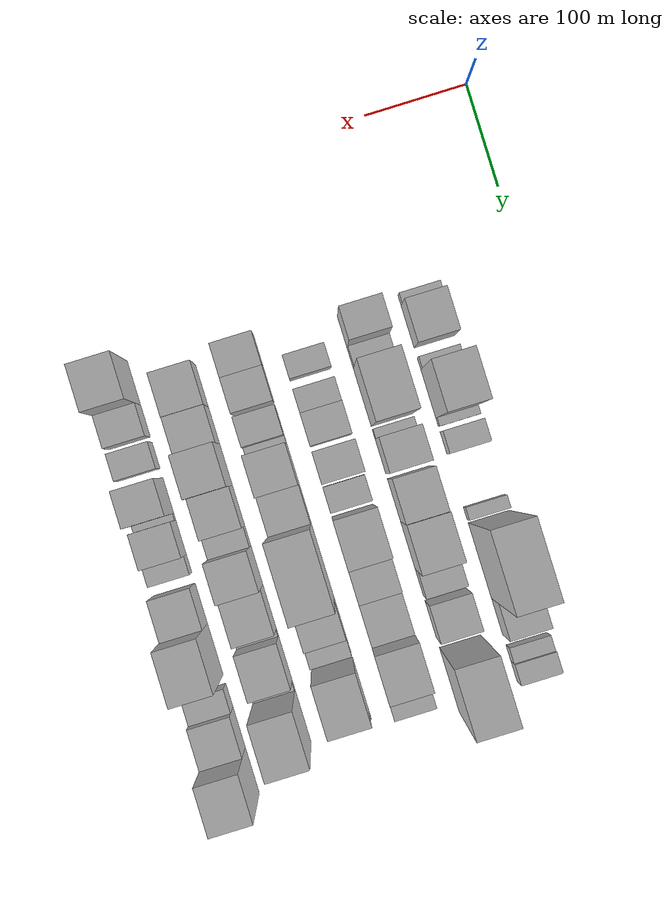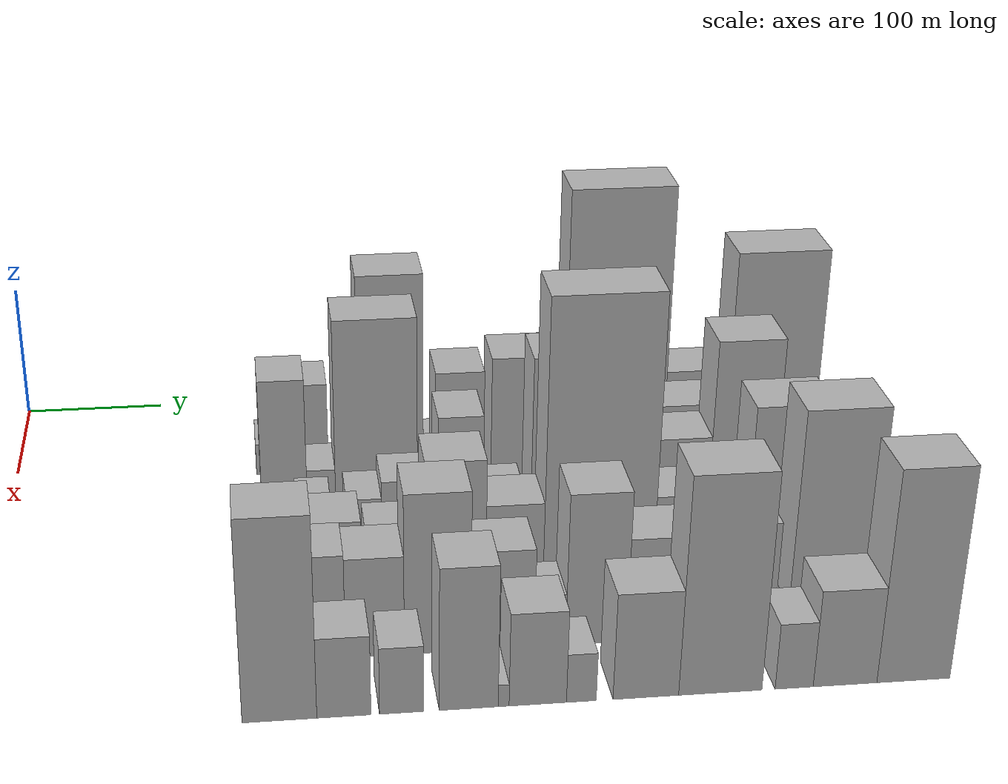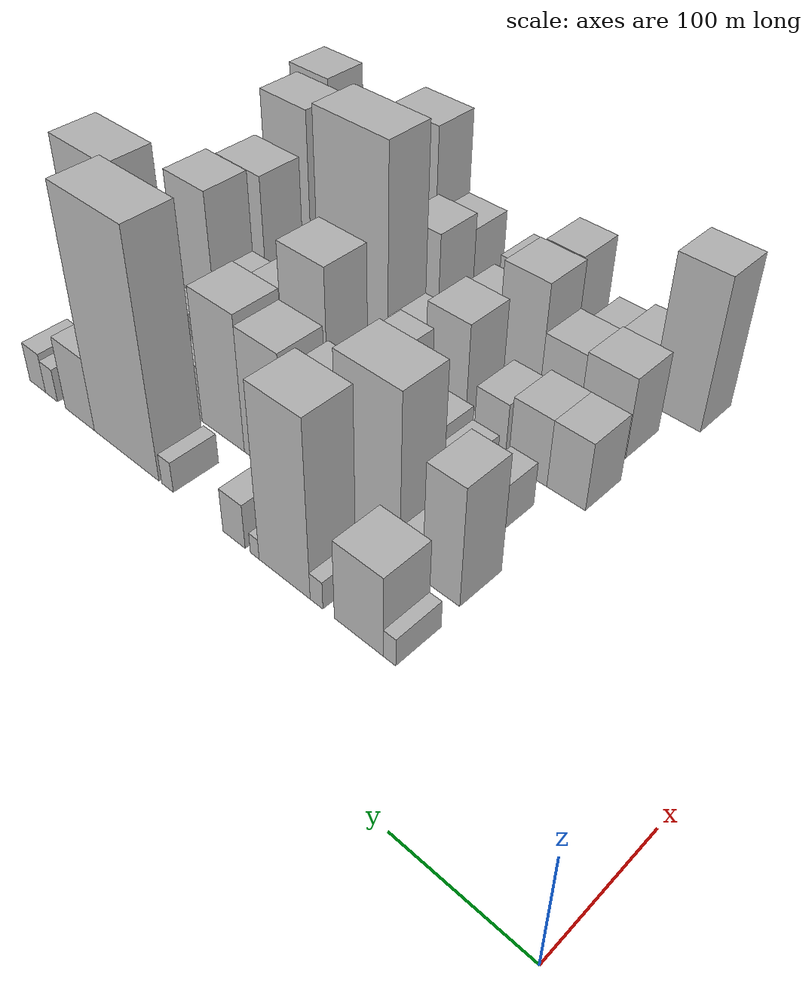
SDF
<sdf version="1.6">
 <world name="default">
  <model name="building_34">
   <static>1</static>
   <pose>100.0000 175.5457 0 0.000000 0.000000 0.000000</pose>
   <link name="link">
    <pose>0 0 12.00 0 0 0</pose>
    <collision name="collision"><geometry><box><size>40.0000 10.1981 24.0000</size></box></geometry></collision>
    <visual name="visual">
     <cast_shadows>0</cast_shadows>
     <geometry><box><size>40.0000 10.1981 24.0000</size></box></geometry>
     <material>
      <script>
       <uri>model://HANNAS_wall/materials/scripts</uri>
       <uri>model://HANNAS_wall/materials/textures</uri>
       <name>vrc/HANNAS_wall</name>
      </script>
     </material>
    </visual>
   </link>
  </model>
  <model name="building_35">
   <static>1</static>
   <pose>100.0000 201.3370 0 0.000000 0.000000 0.000000</pose>
   <link name="link">
    <pose>0 0 34.50 0 0 0</pose>
    <collision name="collision"><geometry><box><size>40.0000 41.3843 69.0000</size></box></geometry></collision>
    <visual name="visual">
     <cast_shadows>0</cast_shadows>
     <geometry><box><size>40.0000 41.3843 69.0000</size></box></geometry>
     <material>
      <script>
       <uri>model://HANNAS_wall/materials/scripts</uri>
       <uri>model://HANNAS_wall/materials/textures</uri>
       <name>vrc/HANNAS_wall</name>
      </script>
     </material>
    </visual>
   </link>
  </model>
  <model name="building_36">
   <static>1</static>
   <pose>100.0000 237.6880 0 0.000000 0.000000 0.000000</pose>
   <link name="link">
    <pose>0 0 12.00 0 0 0</pose>
    <collision name="collision"><geometry><box><size>40.0000 11.3178 24.0000</size></box></geometry></collision>
    <visual name="visual">
     <cast_shadows>0</cast_shadows>
     <geometry><box><size>40.0000 11.3178 24.0000</size></box></geometry>
     <material>
      <script>
       <uri>model://HANNAS_wall/materials/scripts</uri>
       <uri>model://HANNAS_wall/materials/textures</uri>
       <name>vrc/HANNAS_wall</name>
      </script>
     </material>
    </visual>
   </link>
  </model>
  <model name="building_37">
   <static>1</static>
   <pose>100.0000 266.9712 0 0.000000 0.000000 0.000000</pose>
   <link name="link">
    <pose>0 0 75.00 0 0 0</pose>
    <collision name="collision"><geometry><box><size>40.0000 47.2485 150.0000</size></box></geometry></collision>
    <visual name="visual">
     <cast_shadows>0</cast_shadows>
     <geometry><box><size>40.0000 47.2485 150.0000</size></box></geometry>
     <material>
      <script>
       <uri>model://HANNAS_wall/materials/scripts</uri>
       <uri>model://HANNAS_wall/materials/textures</uri>
       <name>vrc/HANNAS_wall</name>
      </script>
     </material>
    </visual>
   </link>
  </model>
  <model name="building_38">
   <static>1</static>
   <pose>100.0000 294.8490 0 0.000000 0.000000 0.000000</pose>
   <link name="link">
    <pose>0 0 9.00 0 0 0</pose>
    <collision name="collision"><geometry><box><size>40.0000 8.5072 18.0000</size></box></geometry></collision>
    <visual name="visual">
     <cast_shadows>0</cast_shadows>
     <geometry><box><size>40.0000 8.5072 18.0000</size></box></geometry>
     <material>
      <script>
       <uri>model://HANNAS_wall/materials/scripts</uri>
       <uri>model://HANNAS_wall/materials/textures</uri>
       <name>vrc/HANNAS_wall</name>
      </script>
     </material>
    </visual>
   </link>
  </model>
  <model name="building_39">
   <static>1</static>
   <pose>100.0000 315.0152 0 0.000000 0.000000 0.000000</pose>
   <link name="link">
    <pose>0 0 19.50 0 0 0</pose>
    <collision name="collision"><geometry><box><size>40.0000 21.8251 39.0000</size></box></geometry></collision>
    <visual name="visual">
     <cast_shadows>0</cast_shadows>
     <geometry><box><size>40.0000 21.8251 39.0000</size></box></geometry>
     <material>
      <script>
       <uri>model://HANNAS_wall/materials/scripts</uri>
       <uri>model://HANNAS_wall/materials/textures</uri>
       <name>vrc/HANNAS_wall</name>
      </script>
     </material>
    </visual>
   </link>
  </model>
  <model name="building_40">
   <static>1</static>
   <pose>100.0000 383.6882 0 0.000000 0.000000 0.000000</pose>
   <link name="link">
    <pose>0 0 13.50 0 0 0</pose>
    <collision name="collision"><geometry><box><size>40.0000 12.5069 27.0000</size></box></geometry></collision>
    <visual name="visual">
     <cast_shadows>0</cast_shadows>
     <geometry><box><size>40.0000 12.5069 27.0000</size></box></geometry>
     <material>
      <script>
       <uri>model://HANNAS_wall/materials/scripts</uri>
       <uri>model://HANNAS_wall/materials/textures</uri>
       <name>vrc/HANNAS_wall</name>
      </script>
     </material>
    </visual>
   </link>
  </model>
  <model name="building_41">
   <static>1</static>
   <pose>100.0000 429.8173 0 0.000000 0.000000 0.000000</pose>
   <link name="link">
    <pose>0 0 103.50 0 0 0</pose>
    <collision name="collision"><geometry><box><size>40.0000 73.7513 207.0000</size></box></geometry></collision>
    <visual name="visual">
     <cast_shadows>0</cast_shadows>
     <geometry><box><size>40.0000 73.7513 207.0000</size></box></geometry>
     <material>
      <script>
       <uri>model://HANNAS_wall/materials/scripts</uri>
       <uri>model://HANNAS_wall/materials/textures</uri>
       <name>vrc/HANNAS_wall</name>
      </script>
     </material>
    </visual>
   </link>
  </model>
  <model name="building_42">
   <static>1</static>
   <pose>100.0000 484.3478 0 0.000000 0.000000 0.000000</pose>
   <link name="link">
    <pose>0 0 33.00 0 0 0</pose>
    <collision name="collision"><geometry><box><size>40.0000 35.3099 66.0000</size></box></geometry></collision>
    <visual name="visual">
     <cast_shadows>0</cast_shadows>
     <geometry><box><size>40.0000 35.3099 66.0000</size></box></geometry>
     <material>
      <script>
       <uri>model://HANNAS_wall/materials/scripts</uri>
       <uri>model://HANNAS_wall/materials/textures</uri>
       <name>vrc/HANNAS_wall</name>
      </script>
     </material>
    </visual>
   </link>
  </model>
  <model name="building_43">
   <static>1</static>
   <pose>100.0000 519.5721 0 0.000000 0.000000 0.000000</pose>
   <link name="link">
    <pose>0 0 15.00 0 0 0</pose>
    <collision name="collision"><geometry><box><size>40.0000 15.1387 30.0000</size></box></geometry></collision>
    <visual name="visual">
     <cast_shadows>0</cast_shadows>
     <geometry><box><size>40.0000 15.1387 30.0000</size></box></geometry>
     <material>
      <script>
       <uri>model://HANNAS_wall/materials/scripts</uri>
       <uri>model://HANNAS_wall/materials/textures</uri>
       <name>vrc/HANNAS_wall</name>
      </script>
     </material>
    </visual>
   </link>
  </model>
  <model name="building_44">
   <static>1</static>
   <pose>100.0000 537.2806 0 0.000000 0.000000 0.000000</pose>
   <link name="link">
    <pose>0 0 18.00 0 0 0</pose>
    <collision name="collision"><geometry><box><size>40.0000 20.2782 36.0000</size></box></geometry></collision>
    <visual name="visual">
     <cast_shadows>0</cast_shadows>
     <geometry><box><size>40.0000 20.2782 36.0000</size></box></geometry>
     <material>
      <script>
       <uri>model://HANNAS_wall/materials/scripts</uri>
       <uri>model://HANNAS_wall/materials/textures</uri>
       <name>vrc/HANNAS_wall</name>
      </script>
     </material>
    </visual>
   </link>
  </model>
  <model name="building_83">
   <static>1</static>
   <pose>160.0000 188.4977 0 0.000000 0.000000 0.000000</pose>
   <link name="link">
    <pose>0 0 51.00 0 0 0</pose>
    <collision name="collision"><geometry><box><size>40.0000 31.1914 102.0000</size></box></geometry></collision>
    <visual name="visual">
     <cast_shadows>0</cast_shadows>
     <geometry><box><size>40.0000 31.1914 102.0000</size></box></geometry>
     <material>
      <script>
       <uri>model://HANNAS_wall/materials/scripts</uri>
       <uri>model://HANNAS_wall/materials/textures</uri>
       <name>vrc/HANNAS_wall</name>
      </script>
     </material>
    </visual>
   </link>
  </model>
  <model name="building_84">
   <static>1</static>
   <pose>160.0000 213.8882 0 0.000000 0.000000 0.000000</pose>
   <link name="link">
    <pose>0 0 16.50 0 0 0</pose>
    <collision name="collision"><geometry><box><size>40.0000 19.5896 33.0000</size></box></geometry></collision>
    <visual name="visual">
     <cast_shadows>0</cast_shadows>
     <geometry><box><size>40.0000 19.5896 33.0000</size></box></geometry>
     <material>
      <script>
       <uri>model://HANNAS_wall/materials/scripts</uri>
       <uri>model://HANNAS_wall/materials/textures</uri>
       <name>vrc/HANNAS_wall</name>
      </script>
     </material>
    </visual>
   </link>
  </model>
  <model name="building_85">
   <static>1</static>
   <pose>160.0000 252.0422 0 0.000000 0.000000 0.000000</pose>
   <link name="link">
    <pose>0 0 72.00 0 0 0</pose>
    <collision name="collision"><geometry><box><size>40.0000 56.7185 144.0000</size></box></geometry></collision>
    <visual name="visual">
     <cast_shadows>0</cast_shadows>
     <geometry><box><size>40.0000 56.7185 144.0000</size></box></geometry>
     <material>
      <script>
       <uri>model://HANNAS_wall/materials/scripts</uri>
       <uri>model://HANNAS_wall/materials/textures</uri>
       <name>vrc/HANNAS_wall</name>
      </script>
     </material>
    </visual>
   </link>
  </model>
  <model name="building_86">
   <static>1</static>
   <pose>160.0000 288.1974 0 0.000000 0.000000 0.000000</pose>
   <link name="link">
    <pose>0 0 10.50 0 0 0</pose>
    <collision name="collision"><geometry><box><size>40.0000 9.5918 21.0000</size></box></geometry></collision>
    <visual name="visual">
     <cast_shadows>0</cast_shadows>
     <geometry><box><size>40.0000 9.5918 21.0000</size></box></geometry>
     <material>
      <script>
       <uri>model://HANNAS_wall/materials/scripts</uri>
       <uri>model://HANNAS_wall/materials/textures</uri>
       <name>vrc/HANNAS_wall</name>
      </script>
     </material>
    </visual>
   </link>
  </model>
  <model name="building_87">
   <static>1</static>
   <pose>160.0000 309.6847 0 0.000000 0.000000 0.000000</pose>
   <link name="link">
    <pose>0 0 51.00 0 0 0</pose>
    <collision name="collision"><geometry><box><size>40.0000 33.3828 102.0000</size></box></geometry></collision>
    <visual name="visual">
     <cast_shadows>0</cast_shadows>
     <geometry><box><size>40.0000 33.3828 102.0000</size></box></geometry>
     <material>
      <script>
       <uri>model://HANNAS_wall/materials/scripts</uri>
       <uri>model://HANNAS_wall/materials/textures</uri>
       <name>vrc/HANNAS_wall</name>
      </script>
     </material>
    </visual>
   </link>
  </model>
  <model name="building_88">
   <static>1</static>
   <pose>160.0000 352.2447 0 0.000000 0.000000 0.000000</pose>
   <link name="link">
    <pose>0 0 55.50 0 0 0</pose>
    <collision name="collision"><geometry><box><size>40.0000 41.7372 111.0000</size></box></geometry></collision>
    <visual name="visual">
     <cast_shadows>0</cast_shadows>
     <geometry><box><size>40.0000 41.7372 111.0000</size></box></geometry>
     <material>
      <script>
       <uri>model://HANNAS_wall/materials/scripts</uri>
       <uri>model://HANNAS_wall/materials/textures</uri>
       <name>vrc/HANNAS_wall</name>
      </script>
     </material>
    </visual>
   </link>
  </model>
  <model name="building_89">
   <static>1</static>
   <pose>160.0000 396.0472 0 0.000000 0.000000 0.000000</pose>
   <link name="link">
    <pose>0 0 60.00 0 0 0</pose>
    <collision name="collision"><geometry><box><size>40.0000 45.8680 120.0000</size></box></geometry></collision>
    <visual name="visual">
     <cast_shadows>0</cast_shadows>
     <geometry><box><size>40.0000 45.8680 120.0000</size></box></geometry>
     <material>
      <script>
       <uri>model://HANNAS_wall/materials/scripts</uri>
       <uri>model://HANNAS_wall/materials/textures</uri>
       <name>vrc/HANNAS_wall</name>
      </script>
     </material>
    </visual>
   </link>
  </model>
  <model name="building_90">
   <static>1</static>
   <pose>160.0000 432.0781 0 0.000000 0.000000 0.000000</pose>
   <link name="link">
    <pose>0 0 25.50 0 0 0</pose>
    <collision name="collision"><geometry><box><size>40.0000 26.1936 51.0000</size></box></geometry></collision>
    <visual name="visual">
     <cast_shadows>0</cast_shadows>
     <geometry><box><size>40.0000 26.1936 51.0000</size></box></geometry>
     <material>
      <script>
       <uri>model://HANNAS_wall/materials/scripts</uri>
       <uri>model://HANNAS_wall/materials/textures</uri>
       <name>vrc/HANNAS_wall</name>
      </script>
     </material>
    </visual>
   </link>
  </model>
  <model name="building_91">
   <static>1</static>
   <pose>160.0000 468.0800 0 0.000000 0.000000 0.000000</pose>
   <link name="link">
    <pose>0 0 34.50 0 0 0</pose>
    <collision name="collision"><geometry><box><size>40.0000 35.8104 69.0000</size></box></geometry></collision>
    <visual name="visual">
     <cast_shadows>0</cast_shadows>
     <geometry><box><size>40.0000 35.8104 69.0000</size></box></geometry>
     <material>
      <script>
       <uri>model://HANNAS_wall/materials/scripts</uri>
       <uri>model://HANNAS_wall/materials/textures</uri>
       <name>vrc/HANNAS_wall</name>
      </script>
     </material>
    </visual>
   </link>
  </model>
  <model name="building_92">
   <static>1</static>
   <pose>160.0000 527.4487 0 0.000000 0.000000 0.000000</pose>
   <link name="link">
    <pose>0 0 90.00 0 0 0</pose>
    <collision name="collision"><geometry><box><size>40.0000 62.9270 180.0000</size></box></geometry></collision>
    <visual name="visual">
     <cast_shadows>0</cast_shadows>
     <geometry><box><size>40.0000 62.9270 180.0000</size></box></geometry>
     <material>
      <script>
       <uri>model://HANNAS_wall/materials/scripts</uri>
       <uri>model://HANNAS_wall/materials/textures</uri>
       <name>vrc/HANNAS_wall</name>
      </script>
     </material>
    </visual>
   </link>
  </model>
  <model name="building_141">
   <static>1</static>
   <pose>220.0000 206.1817 0 0.000000 0.000000 0.000000</pose>
   <link name="link">
    <pose>0 0 19.50 0 0 0</pose>
    <collision name="collision"><geometry><box><size>40.0000 22.8943 39.0000</size></box></geometry></collision>
    <visual name="visual">
     <cast_shadows>0</cast_shadows>
     <geometry><box><size>40.0000 22.8943 39.0000</size></box></geometry>
     <material>
      <script>
       <uri>model://HANNAS_wall/materials/scripts</uri>
       <uri>model://HANNAS_wall/materials/textures</uri>
       <name>vrc/HANNAS_wall</name>
      </script>
     </material>
    </visual>
   </link>
  </model>
  <model name="building_142">
   <static>1</static>
   <pose>220.0000 239.1516 0 0.000000 0.000000 0.000000</pose>
   <link name="link">
    <pose>0 0 21.00 0 0 0</pose>
    <collision name="collision"><geometry><box><size>40.0000 23.0455 42.0000</size></box></geometry></collision>
    <visual name="visual">
     <cast_shadows>0</cast_shadows>
     <geometry><box><size>40.0000 23.0455 42.0000</size></box></geometry>
     <material>
      <script>
       <uri>model://HANNAS_wall/materials/scripts</uri>
       <uri>model://HANNAS_wall/materials/textures</uri>
       <name>vrc/HANNAS_wall</name>
      </script>
     </material>
    </visual>
   </link>
  </model>
  <model name="building_143">
   <static>1</static>
   <pose>220.0000 266.3930 0 0.000000 0.000000 0.000000</pose>
   <link name="link">
    <pose>0 0 27.00 0 0 0</pose>
    <collision name="collision"><geometry><box><size>40.0000 31.4375 54.0000</size></box></geometry></collision>
    <visual name="visual">
     <cast_shadows>0</cast_shadows>
     <geometry><box><size>40.0000 31.4375 54.0000</size></box></geometry>
     <material>
      <script>
       <uri>model://HANNAS_wall/materials/scripts</uri>
       <uri>model://HANNAS_wall/materials/textures</uri>
       <name>vrc/HANNAS_wall</name>
      </script>
     </material>
    </visual>
   </link>
  </model>
  <model name="building_144">
   <static>1</static>
   <pose>220.0000 303.1343 0 0.000000 0.000000 0.000000</pose>
   <link name="link">
    <pose>0 0 49.50 0 0 0</pose>
    <collision name="collision"><geometry><box><size>40.0000 30.0452 99.0000</size></box></geometry></collision>
    <visual name="visual">
     <cast_shadows>0</cast_shadows>
     <geometry><box><size>40.0000 30.0452 99.0000</size></box></geometry>
     <material>
      <script>
       <uri>model://HANNAS_wall/materials/scripts</uri>
       <uri>model://HANNAS_wall/materials/textures</uri>
       <name>vrc/HANNAS_wall</name>
      </script>
     </material>
    </visual>
   </link>
  </model>
  <model name="building_145">
   <static>1</static>
   <pose>220.0000 333.5855 0 0.000000 0.000000 0.000000</pose>
   <link name="link">
    <pose>0 0 21.00 0 0 0</pose>
    <collision name="collision"><geometry><box><size>40.0000 24.8570 42.0000</size></box></geometry></collision>
    <visual name="visual">
     <cast_shadows>0</cast_shadows>
     <geometry><box><size>40.0000 24.8570 42.0000</size></box></geometry>
     <material>
      <script>
       <uri>model://HANNAS_wall/materials/scripts</uri>
       <uri>model://HANNAS_wall/materials/textures</uri>
       <name>vrc/HANNAS_wall</name>
      </script>
     </material>
    </visual>
   </link>
  </model>
  <model name="building_146">
   <static>1</static>
   <pose>220.0000 372.9505 0 0.000000 0.000000 0.000000</pose>
   <link name="link">
    <pose>0 0 69.00 0 0 0</pose>
    <collision name="collision"><geometry><box><size>40.0000 45.8731 138.0000</size></box></geometry></collision>
    <visual name="visual">
     <cast_shadows>0</cast_shadows>
     <geometry><box><size>40.0000 45.8731 138.0000</size></box></geometry>
     <material>
      <script>
       <uri>model://HANNAS_wall/materials/scripts</uri>
       <uri>model://HANNAS_wall/materials/textures</uri>
       <name>vrc/HANNAS_wall</name>
      </script>
     </material>
    </visual>
   </link>
  </model>
  <model name="building_147">
   <static>1</static>
   <pose>220.0000 412.7759 0 0.000000 0.000000 0.000000</pose>
   <link name="link">
    <pose>0 0 46.50 0 0 0</pose>
    <collision name="collision"><geometry><box><size>40.0000 33.7777 93.0000</size></box></geometry></collision>
    <visual name="visual">
     <cast_shadows>0</cast_shadows>
     <geometry><box><size>40.0000 33.7777 93.0000</size></box></geometry>
     <material>
      <script>
       <uri>model://HANNAS_wall/materials/scripts</uri>
       <uri>model://HANNAS_wall/materials/textures</uri>
       <name>vrc/HANNAS_wall</name>
      </script>
     </material>
    </visual>
   </link>
  </model>
  <model name="building_148">
   <static>1</static>
   <pose>220.0000 449.9620 0 0.000000 0.000000 0.000000</pose>
   <link name="link">
    <pose>0 0 37.50 0 0 0</pose>
    <collision name="collision"><geometry><box><size>40.0000 40.5945 75.0000</size></box></geometry></collision>
    <visual name="visual">
     <cast_shadows>0</cast_shadows>
     <geometry><box><size>40.0000 40.5945 75.0000</size></box></geometry>
     <material>
      <script>
       <uri>model://HANNAS_wall/materials/scripts</uri>
       <uri>model://HANNAS_wall/materials/textures</uri>
       <name>vrc/HANNAS_wall</name>
      </script>
     </material>
    </visual>
   </link>
  </model>
  <model name="building_149">
   <static>1</static>
   <pose>220.0000 492.5916 0 0.000000 0.000000 0.000000</pose>
   <link name="link">
    <pose>0 0 72.00 0 0 0</pose>
    <collision name="collision"><geometry><box><size>40.0000 44.6647 144.0000</size></box></geometry></collision>
    <visual name="visual">
     <cast_shadows>0</cast_shadows>
     <geometry><box><size>40.0000 44.6647 144.0000</size></box></geometry>
     <material>
      <script>
       <uri>model://HANNAS_wall/materials/scripts</uri>
       <uri>model://HANNAS_wall/materials/textures</uri>
       <name>vrc/HANNAS_wall</name>
      </script>
     </material>
    </visual>
   </link>
  </model>
  <model name="building_150">
   <static>1</static>
   <pose>220.0000 528.5222 0 0.000000 0.000000 0.000000</pose>
   <link name="link">
    <pose>0 0 25.50 0 0 0</pose>
    <collision name="collision"><geometry><box><size>40.0000 27.1964 51.0000</size></box></geometry></collision>
    <visual name="visual">
     <cast_shadows>0</cast_shadows>
     <geometry><box><size>40.0000 27.1964 51.0000</size></box></geometry>
     <material>
      <script>
       <uri>model://HANNAS_wall/materials/scripts</uri>
       <uri>model://HANNAS_wall/materials/textures</uri>
       <name>vrc/HANNAS_wall</name>
      </script>
     </material>
    </visual>
   </link>
  </model>
  <model name="building_193">
   <static>1</static>
   <pose>280.0000 183.0127 0 0.000000 0.000000 0.000000</pose>
   <link name="link">
    <pose>0 0 30.00 0 0 0</pose>
    <collision name="collision"><geometry><box><size>40.0000 32.5792 60.0000</size></box></geometry></collision>
    <visual name="visual">
     <cast_shadows>0</cast_shadows>
     <geometry><box><size>40.0000 32.5792 60.0000</size></box></geometry>
     <material>
      <script>
       <uri>model://HANNAS_wall/materials/scripts</uri>
       <uri>model://HANNAS_wall/materials/textures</uri>
       <name>vrc/HANNAS_wall</name>
      </script>
     </material>
    </visual>
   </link>
  </model>
  <model name="building_194">
   <static>1</static>
   <pose>280.0000 216.1455 0 0.000000 0.000000 0.000000</pose>
   <link name="link">
    <pose>0 0 30.00 0 0 0</pose>
    <collision name="collision"><geometry><box><size>40.0000 33.6865 60.0000</size></box></geometry></collision>
    <visual name="visual">
     <cast_shadows>0</cast_shadows>
     <geometry><box><size>40.0000 33.6865 60.0000</size></box></geometry>
     <material>
      <script>
       <uri>model://HANNAS_wall/materials/scripts</uri>
       <uri>model://HANNAS_wall/materials/textures</uri>
       <name>vrc/HANNAS_wall</name>
      </script>
     </material>
    </visual>
   </link>
  </model>
  <model name="building_195">
   <static>1</static>
   <pose>280.0000 250.4235 0 0.000000 0.000000 0.000000</pose>
   <link name="link">
    <pose>0 0 25.50 0 0 0</pose>
    <collision name="collision"><geometry><box><size>40.0000 28.8694 51.0000</size></box></geometry></collision>
    <visual name="visual">
     <cast_shadows>0</cast_shadows>
     <geometry><box><size>40.0000 28.8694 51.0000</size></box></geometry>
     <material>
      <script>
       <uri>model://HANNAS_wall/materials/scripts</uri>
       <uri>model://HANNAS_wall/materials/textures</uri>
       <name>vrc/HANNAS_wall</name>
      </script>
     </material>
    </visual>
   </link>
  </model>
  <model name="building_196">
   <static>1</static>
   <pose>280.0000 268.9981 0 0.000000 0.000000 0.000000</pose>
   <link name="link">
    <pose>0 0 9.00 0 0 0</pose>
    <collision name="collision"><geometry><box><size>40.0000 8.2798 18.0000</size></box></geometry></collision>
    <visual name="visual">
     <cast_shadows>0</cast_shadows>
     <geometry><box><size>40.0000 8.2798 18.0000</size></box></geometry>
     <material>
      <script>
       <uri>model://HANNAS_wall/materials/scripts</uri>
       <uri>model://HANNAS_wall/materials/textures</uri>
       <name>vrc/HANNAS_wall</name>
      </script>
     </material>
    </visual>
   </link>
  </model>
  <model name="building_197">
   <static>1</static>
   <pose>280.0000 292.6405 0 0.000000 0.000000 0.000000</pose>
   <link name="link">
    <pose>0 0 49.50 0 0 0</pose>
    <collision name="collision"><geometry><box><size>40.0000 39.0050 99.0000</size></box></geometry></collision>
    <visual name="visual">
     <cast_shadows>0</cast_shadows>
     <geometry><box><size>40.0000 39.0050 99.0000</size></box></geometry>
     <material>
      <script>
       <uri>model://HANNAS_wall/materials/scripts</uri>
       <uri>model://HANNAS_wall/materials/textures</uri>
       <name>vrc/HANNAS_wall</name>
      </script>
     </material>
    </visual>
   </link>
  </model>
  <model name="building_198">
   <static>1</static>
   <pose>280.0000 330.6447 0 0.000000 0.000000 0.000000</pose>
   <link name="link">
    <pose>0 0 33.00 0 0 0</pose>
    <collision name="collision"><geometry><box><size>40.0000 37.0033 66.0000</size></box></geometry></collision>
    <visual name="visual">
     <cast_shadows>0</cast_shadows>
     <geometry><box><size>40.0000 37.0033 66.0000</size></box></geometry>
     <material>
      <script>
       <uri>model://HANNAS_wall/materials/scripts</uri>
       <uri>model://HANNAS_wall/materials/textures</uri>
       <name>vrc/HANNAS_wall</name>
      </script>
     </material>
    </visual>
   </link>
  </model>
  <model name="building_199">
   <static>1</static>
   <pose>280.0000 384.9149 0 0.000000 0.000000 0.000000</pose>
   <link name="link">
    <pose>0 0 103.50 0 0 0</pose>
    <collision name="collision"><geometry><box><size>40.0000 71.5371 207.0000</size></box></geometry></collision>
    <visual name="visual">
     <cast_shadows>0</cast_shadows>
     <geometry><box><size>40.0000 71.5371 207.0000</size></box></geometry>
     <material>
      <script>
       <uri>model://HANNAS_wall/materials/scripts</uri>
       <uri>model://HANNAS_wall/materials/textures</uri>
       <name>vrc/HANNAS_wall</name>
      </script>
     </material>
    </visual>
   </link>
  </model>
  <model name="building_200">
   <static>1</static>
   <pose>280.0000 439.3189 0 0.000000 0.000000 0.000000</pose>
   <link name="link">
    <pose>0 0 33.00 0 0 0</pose>
    <collision name="collision"><geometry><box><size>40.0000 37.2708 66.0000</size></box></geometry></collision>
    <visual name="visual">
     <cast_shadows>0</cast_shadows>
     <geometry><box><size>40.0000 37.2708 66.0000</size></box></geometry>
     <material>
      <script>
       <uri>model://HANNAS_wall/materials/scripts</uri>
       <uri>model://HANNAS_wall/materials/textures</uri>
       <name>vrc/HANNAS_wall</name>
      </script>
     </material>
    </visual>
   </link>
  </model>
  <model name="building_201">
   <static>1</static>
   <pose>280.0000 467.3201 0 0.000000 0.000000 0.000000</pose>
   <link name="link">
    <pose>0 0 18.00 0 0 0</pose>
    <collision name="collision"><geometry><box><size>40.0000 18.7317 36.0000</size></box></geometry></collision>
    <visual name="visual">
     <cast_shadows>0</cast_shadows>
     <geometry><box><size>40.0000 18.7317 36.0000</size></box></geometry>
     <material>
      <script>
       <uri>model://HANNAS_wall/materials/scripts</uri>
       <uri>model://HANNAS_wall/materials/textures</uri>
       <name>vrc/HANNAS_wall</name>
      </script>
     </material>
    </visual>
   </link>
  </model>
  <model name="building_202">
   <static>1</static>
   <pose>280.0000 505.3493 0 0.000000 0.000000 0.000000</pose>
   <link name="link">
    <pose>0 0 63.00 0 0 0</pose>
    <collision name="collision"><geometry><box><size>40.0000 49.3266 126.0000</size></box></geometry></collision>
    <visual name="visual">
     <cast_shadows>0</cast_shadows>
     <geometry><box><size>40.0000 49.3266 126.0000</size></box></geometry>
     <material>
      <script>
       <uri>model://HANNAS_wall/materials/scripts</uri>
       <uri>model://HANNAS_wall/materials/textures</uri>
       <name>vrc/HANNAS_wall</name>
      </script>
     </material>
    </visual>
   </link>
  </model>
  <model name="building_203">
   <static>1</static>
   <pose>280.0000 534.2935 0 0.000000 0.000000 0.000000</pose>
   <link name="link">
    <pose>0 0 10.50 0 0 0</pose>
    <collision name="collision"><geometry><box><size>40.0000 8.5618 21.0000</size></box></geometry></collision>
    <visual name="visual">
     <cast_shadows>0</cast_shadows>
     <geometry><box><size>40.0000 8.5618 21.0000</size></box></geometry>
     <material>
      <script>
       <uri>model://HANNAS_wall/materials/scripts</uri>
       <uri>model://HANNAS_wall/materials/textures</uri>
       <name>vrc/HANNAS_wall</name>
      </script>
     </material>
    </visual>
   </link>
  </model>
  <model name="building_248">
   <static>1</static>
   <pose>340.0000 197.6797 0 0.000000 0.000000 0.000000</pose>
   <link name="link">
    <pose>0 0 36.00 0 0 0</pose>
    <collision name="collision"><geometry><box><size>40.0000 41.4326 72.0000</size></box></geometry></collision>
    <visual name="visual">
     <cast_shadows>0</cast_shadows>
     <geometry><box><size>40.0000 41.4326 72.0000</size></box></geometry>
     <material>
      <script>
       <uri>model://HANNAS_wall/materials/scripts</uri>
       <uri>model://HANNAS_wall/materials/textures</uri>
       <name>vrc/HANNAS_wall</name>
      </script>
     </material>
    </visual>
   </link>
  </model>
  <model name="building_249">
   <static>1</static>
   <pose>340.0000 236.3397 0 0.000000 0.000000 0.000000</pose>
   <link name="link">
    <pose>0 0 34.50 0 0 0</pose>
    <collision name="collision"><geometry><box><size>40.0000 35.8874 69.0000</size></box></geometry></collision>
    <visual name="visual">
     <cast_shadows>0</cast_shadows>
     <geometry><box><size>40.0000 35.8874 69.0000</size></box></geometry>
     <material>
      <script>
       <uri>model://HANNAS_wall/materials/scripts</uri>
       <uri>model://HANNAS_wall/materials/textures</uri>
       <name>vrc/HANNAS_wall</name>
      </script>
     </material>
    </visual>
   </link>
  </model>
  <model name="building_250">
   <static>1</static>
   <pose>340.0000 274.6584 0 0.000000 0.000000 0.000000</pose>
   <link name="link">
    <pose>0 0 55.50 0 0 0</pose>
    <collision name="collision"><geometry><box><size>40.0000 40.7499 111.0000</size></box></geometry></collision>
    <visual name="visual">
     <cast_shadows>0</cast_shadows>
     <geometry><box><size>40.0000 40.7499 111.0000</size></box></geometry>
     <material>
      <script>
       <uri>model://HANNAS_wall/materials/scripts</uri>
       <uri>model://HANNAS_wall/materials/textures</uri>
       <name>vrc/HANNAS_wall</name>
      </script>
     </material>
    </visual>
   </link>
  </model>
  <model name="building_251">
   <static>1</static>
   <pose>340.0000 314.6876 0 0.000000 0.000000 0.000000</pose>
   <link name="link">
    <pose>0 0 34.50 0 0 0</pose>
    <collision name="collision"><geometry><box><size>40.0000 39.3085 69.0000</size></box></geometry></collision>
    <visual name="visual">
     <cast_shadows>0</cast_shadows>
     <geometry><box><size>40.0000 39.3085 69.0000</size></box></geometry>
     <material>
      <script>
       <uri>model://HANNAS_wall/materials/scripts</uri>
       <uri>model://HANNAS_wall/materials/textures</uri>
       <name>vrc/HANNAS_wall</name>
      </script>
     </material>
    </visual>
   </link>
  </model>
  <model name="building_252">
   <static>1</static>
   <pose>340.0000 344.0107 0 0.000000 0.000000 0.000000</pose>
   <link name="link">
    <pose>0 0 18.00 0 0 0</pose>
    <collision name="collision"><geometry><box><size>40.0000 19.3377 36.0000</size></box></geometry></collision>
    <visual name="visual">
     <cast_shadows>0</cast_shadows>
     <geometry><box><size>40.0000 19.3377 36.0000</size></box></geometry>
     <material>
      <script>
       <uri>model://HANNAS_wall/materials/scripts</uri>
       <uri>model://HANNAS_wall/materials/textures</uri>
       <name>vrc/HANNAS_wall</name>
      </script>
     </material>
    </visual>
   </link>
  </model>
  <model name="building_253">
   <static>1</static>
   <pose>340.0000 372.7084 0 0.000000 0.000000 0.000000</pose>
   <link name="link">
    <pose>0 0 52.50 0 0 0</pose>
    <collision name="collision"><geometry><box><size>40.0000 38.0577 105.0000</size></box></geometry></collision>
    <visual name="visual">
     <cast_shadows>0</cast_shadows>
     <geometry><box><size>40.0000 38.0577 105.0000</size></box></geometry>
     <material>
      <script>
       <uri>model://HANNAS_wall/materials/scripts</uri>
       <uri>model://HANNAS_wall/materials/textures</uri>
       <name>vrc/HANNAS_wall</name>
      </script>
     </material>
    </visual>
   </link>
  </model>
  <model name="building_254">
   <static>1</static>
   <pose>340.0000 413.0956 0 0.000000 0.000000 0.000000</pose>
   <link name="link">
    <pose>0 0 36.00 0 0 0</pose>
    <collision name="collision"><geometry><box><size>40.0000 42.7167 72.0000</size></box></geometry></collision>
    <visual name="visual">
     <cast_shadows>0</cast_shadows>
     <geometry><box><size>40.0000 42.7167 72.0000</size></box></geometry>
     <material>
      <script>
       <uri>model://HANNAS_wall/materials/scripts</uri>
       <uri>model://HANNAS_wall/materials/textures</uri>
       <name>vrc/HANNAS_wall</name>
      </script>
     </material>
    </visual>
   </link>
  </model>
  <model name="building_255">
   <static>1</static>
   <pose>340.0000 437.6390 0 0.000000 0.000000 0.000000</pose>
   <link name="link">
    <pose>0 0 7.50 0 0 0</pose>
    <collision name="collision"><geometry><box><size>40.0000 6.3700 15.0000</size></box></geometry></collision>
    <visual name="visual">
     <cast_shadows>0</cast_shadows>
     <geometry><box><size>40.0000 6.3700 15.0000</size></box></geometry>
     <material>
      <script>
       <uri>model://HANNAS_wall/materials/scripts</uri>
       <uri>model://HANNAS_wall/materials/textures</uri>
       <name>vrc/HANNAS_wall</name>
      </script>
     </material>
    </visual>
   </link>
  </model>
  <model name="building_256">
   <static>1</static>
   <pose>340.0000 462.6005 0 0.000000 0.000000 0.000000</pose>
   <link name="link">
    <pose>0 0 39.00 0 0 0</pose>
    <collision name="collision"><geometry><box><size>40.0000 43.5531 78.0000</size></box></geometry></collision>
    <visual name="visual">
     <cast_shadows>0</cast_shadows>
     <geometry><box><size>40.0000 43.5531 78.0000</size></box></geometry>
     <material>
      <script>
       <uri>model://HANNAS_wall/materials/scripts</uri>
       <uri>model://HANNAS_wall/materials/textures</uri>
       <name>vrc/HANNAS_wall</name>
      </script>
     </material>
    </visual>
   </link>
  </model>
  <model name="building_257">
   <static>1</static>
   <pose>340.0000 488.6330 0 0.000000 0.000000 0.000000</pose>
   <link name="link">
    <pose>0 0 9.00 0 0 0</pose>
    <collision name="collision"><geometry><box><size>40.0000 8.5120 18.0000</size></box></geometry></collision>
    <visual name="visual">
     <cast_shadows>0</cast_shadows>
     <geometry><box><size>40.0000 8.5120 18.0000</size></box></geometry>
     <material>
      <script>
       <uri>model://HANNAS_wall/materials/scripts</uri>
       <uri>model://HANNAS_wall/materials/textures</uri>
       <name>vrc/HANNAS_wall</name>
      </script>
     </material>
    </visual>
   </link>
  </model>
  <model name="building_258">
   <static>1</static>
   <pose>340.0000 518.7307 0 0.000000 0.000000 0.000000</pose>
   <link name="link">
    <pose>0 0 76.50 0 0 0</pose>
    <collision name="collision"><geometry><box><size>40.0000 51.6833 153.0000</size></box></geometry></collision>
    <visual name="visual">
     <cast_shadows>0</cast_shadows>
     <geometry><box><size>40.0000 51.6833 153.0000</size></box></geometry>
     <material>
      <script>
       <uri>model://HANNAS_wall/materials/scripts</uri>
       <uri>model://HANNAS_wall/materials/textures</uri>
       <name>vrc/HANNAS_wall</name>
      </script>
     </material>
    </visual>
   </link>
  </model>
  <model name="building_305">
   <static>1</static>
   <pose>400.0000 176.2076 0 0.000000 0.000000 0.000000</pose>
   <link name="link">
    <pose>0 0 67.50 0 0 0</pose>
    <collision name="collision"><geometry><box><size>40.0000 43.1317 135.0000</size></box></geometry></collision>
    <visual name="visual">
     <cast_shadows>0</cast_shadows>
     <geometry><box><size>40.0000 43.1317 135.0000</size></box></geometry>
     <material>
      <script>
       <uri>model://HANNAS_wall/materials/scripts</uri>
       <uri>model://HANNAS_wall/materials/textures</uri>
       <name>vrc/HANNAS_wall</name>
      </script>
     </material>
    </visual>
   </link>
  </model>
  <model name="building_306">
   <static>1</static>
   <pose>400.0000 213.4622 0 0.000000 0.000000 0.000000</pose>
   <link name="link">
    <pose>0 0 27.00 0 0 0</pose>
    <collision name="collision"><geometry><box><size>40.0000 31.3776 54.0000</size></box></geometry></collision>
    <visual name="visual">
     <cast_shadows>0</cast_shadows>
     <geometry><box><size>40.0000 31.3776 54.0000</size></box></geometry>
     <material>
      <script>
       <uri>model://HANNAS_wall/materials/scripts</uri>
       <uri>model://HANNAS_wall/materials/textures</uri>
       <name>vrc/HANNAS_wall</name>
      </script>
     </material>
    </visual>
   </link>
  </model>
  <model name="building_307">
   <static>1</static>
   <pose>400.0000 247.1052 0 0.000000 0.000000 0.000000</pose>
   <link name="link">
    <pose>0 0 22.50 0 0 0</pose>
    <collision name="collision"><geometry><box><size>40.0000 25.9083 45.0000</size></box></geometry></collision>
    <visual name="visual">
     <cast_shadows>0</cast_shadows>
     <geometry><box><size>40.0000 25.9083 45.0000</size></box></geometry>
     <material>
      <script>
       <uri>model://HANNAS_wall/materials/scripts</uri>
       <uri>model://HANNAS_wall/materials/textures</uri>
       <name>vrc/HANNAS_wall</name>
      </script>
     </material>
    </visual>
   </link>
  </model>
  <model name="building_308">
   <static>1</static>
   <pose>400.0000 286.3631 0 0.000000 0.000000 0.000000</pose>
   <link name="link">
    <pose>0 0 48.00 0 0 0</pose>
    <collision name="collision"><geometry><box><size>40.0000 34.6075 96.0000</size></box></geometry></collision>
    <visual name="visual">
     <cast_shadows>0</cast_shadows>
     <geometry><box><size>40.0000 34.6075 96.0000</size></box></geometry>
     <material>
      <script>
       <uri>model://HANNAS_wall/materials/scripts</uri>
       <uri>model://HANNAS_wall/materials/textures</uri>
       <name>vrc/HANNAS_wall</name>
      </script>
     </material>
    </visual>
   </link>
  </model>
  <model name="building_309">
   <static>1</static>
   <pose>400.0000 306.8740 0 0.000000 0.000000 0.000000</pose>
   <link name="link">
    <pose>0 0 7.50 0 0 0</pose>
    <collision name="collision"><geometry><box><size>40.0000 6.4144 15.0000</size></box></geometry></collision>
    <visual name="visual">
     <cast_shadows>0</cast_shadows>
     <geometry><box><size>40.0000 6.4144 15.0000</size></box></geometry>
     <material>
      <script>
       <uri>model://HANNAS_wall/materials/scripts</uri>
       <uri>model://HANNAS_wall/materials/textures</uri>
       <name>vrc/HANNAS_wall</name>
      </script>
     </material>
    </visual>
   </link>
  </model>
  <model name="building_310">
   <static>1</static>
   <pose>400.0000 327.0604 0 0.000000 0.000000 0.000000</pose>
   <link name="link">
    <pose>0 0 31.50 0 0 0</pose>
    <collision name="collision"><geometry><box><size>40.0000 33.9583 63.0000</size></box></geometry></collision>
    <visual name="visual">
     <cast_shadows>0</cast_shadows>
     <geometry><box><size>40.0000 33.9583 63.0000</size></box></geometry>
     <material>
      <script>
       <uri>model://HANNAS_wall/materials/scripts</uri>
       <uri>model://HANNAS_wall/materials/textures</uri>
       <name>vrc/HANNAS_wall</name>
      </script>
     </material>
    </visual>
   </link>
  </model>
  <model name="building_311">
   <static>1</static>
   <pose>400.0000 352.8801 0 0.000000 0.000000 0.000000</pose>
   <link name="link">
    <pose>0 0 16.50 0 0 0</pose>
    <collision name="collision"><geometry><box><size>40.0000 17.6813 33.0000</size></box></geometry></collision>
    <visual name="visual">
     <cast_shadows>0</cast_shadows>
     <geometry><box><size>40.0000 17.6813 33.0000</size></box></geometry>
     <material>
      <script>
       <uri>model://HANNAS_wall/materials/scripts</uri>
       <uri>model://HANNAS_wall/materials/textures</uri>
       <name>vrc/HANNAS_wall</name>
      </script>
     </material>
    </visual>
   </link>
  </model>
  <model name="building_312">
   <static>1</static>
   <pose>400.0000 391.3553 0 0.000000 0.000000 0.000000</pose>
   <link name="link">
    <pose>0 0 36.00 0 0 0</pose>
    <collision name="collision"><geometry><box><size>40.0000 39.2689 72.0000</size></box></geometry></collision>
    <visual name="visual">
     <cast_shadows>0</cast_shadows>
     <geometry><box><size>40.0000 39.2689 72.0000</size></box></geometry>
     <material>
      <script>
       <uri>model://HANNAS_wall/materials/scripts</uri>
       <uri>model://HANNAS_wall/materials/textures</uri>
       <name>vrc/HANNAS_wall</name>
      </script>
     </material>
    </visual>
   </link>
  </model>
  <model name="building_313">
   <static>1</static>
   <pose>400.0000 436.0811 0 0.000000 0.000000 0.000000</pose>
   <link name="link">
    <pose>0 0 73.50 0 0 0</pose>
    <collision name="collision"><geometry><box><size>40.0000 50.1827 147.0000</size></box></geometry></collision>
    <visual name="visual">
     <cast_shadows>0</cast_shadows>
     <geometry><box><size>40.0000 50.1827 147.0000</size></box></geometry>
     <material>
      <script>
       <uri>model://HANNAS_wall/materials/scripts</uri>
       <uri>model://HANNAS_wall/materials/textures</uri>
       <name>vrc/HANNAS_wall</name>
      </script>
     </material>
    </visual>
   </link>
  </model>
  <model name="building_314">
   <static>1</static>
   <pose>400.0000 480.7428 0 0.000000 0.000000 0.000000</pose>
   <link name="link">
    <pose>0 0 22.50 0 0 0</pose>
    <collision name="collision"><geometry><box><size>40.0000 23.1406 45.0000</size></box></geometry></collision>
    <visual name="visual">
     <cast_shadows>0</cast_shadows>
     <geometry><box><size>40.0000 23.1406 45.0000</size></box></geometry>
     <material>
      <script>
       <uri>model://HANNAS_wall/materials/scripts</uri>
       <uri>model://HANNAS_wall/materials/textures</uri>
       <name>vrc/HANNAS_wall</name>
      </script>
     </material>
    </visual>
   </link>
  </model>
  <model name="building_315">
   <static>1</static>
   <pose>400.0000 511.7465 0 0.000000 0.000000 0.000000</pose>
   <link name="link">
    <pose>0 0 33.00 0 0 0</pose>
    <collision name="collision"><geometry><box><size>40.0000 38.8668 66.0000</size></box></geometry></collision>
    <visual name="visual">
     <cast_shadows>0</cast_shadows>
     <geometry><box><size>40.0000 38.8668 66.0000</size></box></geometry>
     <material>
      <script>
       <uri>model://HANNAS_wall/materials/scripts</uri>
       <uri>model://HANNAS_wall/materials/textures</uri>
       <name>vrc/HANNAS_wall</name>
      </script>
     </material>
    </visual>
   </link>
  </model>
  <model name="building_316">
   <static>1</static>
   <pose>400.0000 553.5884 0 0.000000 0.000000 0.000000</pose>
   <link name="link">
    <pose>0 0 72.00 0 0 0</pose>
    <collision name="collision"><geometry><box><size>40.0000 44.8169 144.0000</size></box></geometry></collision>
    <visual name="visual">
     <cast_shadows>0</cast_shadows>
     <geometry><box><size>40.0000 44.8169 144.0000</size></box></geometry>
     <material>
      <script>
       <uri>model://HANNAS_wall/materials/scripts</uri>
       <uri>model://HANNAS_wall/materials/textures</uri>
       <name>vrc/HANNAS_wall</name>
      </script>
     </material>
    </visual>
   </link>
  </model>
 </world>
</sdf>
